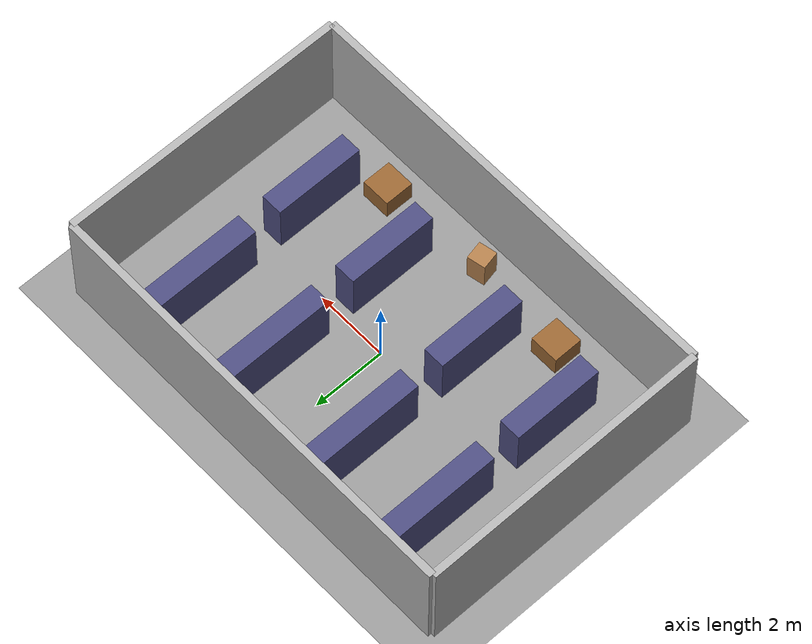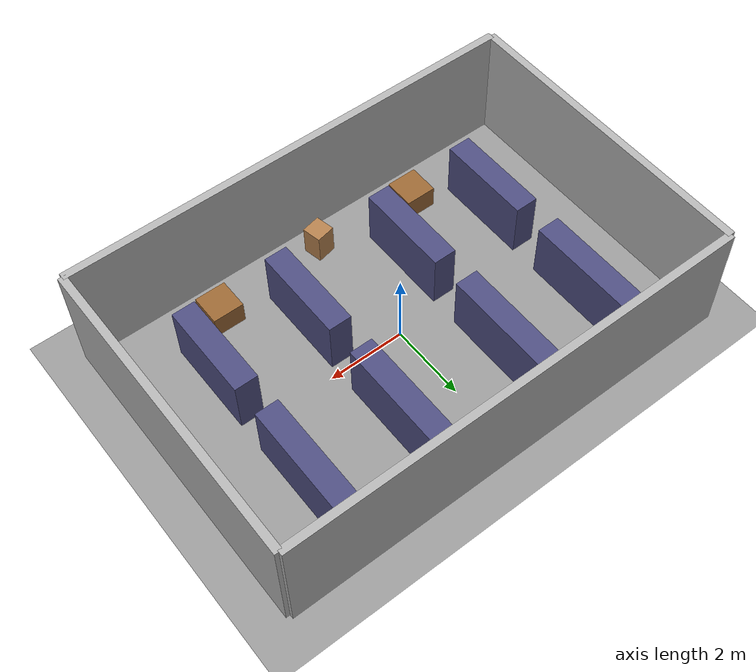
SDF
<?xml version="1.0" ?>
<sdf version="1.8">
  <world name="warehouse">

    <!-- Physics -->
    <physics name="1ms" type="ignored">
      <max_step_size>0.001</max_step_size>
      <real_time_factor>1.0</real_time_factor>
    </physics>

    <!-- Plugins -->
    <plugin filename="gz-sim-physics-system" name="gz::sim::systems::Physics"/>
    <plugin filename="gz-sim-user-commands-system" name="gz::sim::systems::UserCommands"/>
    <plugin filename="gz-sim-scene-broadcaster-system" name="gz::sim::systems::SceneBroadcaster"/>
    <plugin filename="gz-sim-sensors-system" name="gz::sim::systems::Sensors">
      <render_engine>ogre2</render_engine>
    </plugin>
    <plugin filename="gz-sim-imu-system" name="gz::sim::systems::Imu"/>
    <plugin filename="gz-sim-contact-system" name="gz::sim::systems::Contact"/>

    <!-- Lighting -->
    <light type="directional" name="sun">
      <cast_shadows>true</cast_shadows>
      <pose>0 0 15 0 0 0</pose>
      <diffuse>0.9 0.9 0.9 1</diffuse>
      <specular>0.3 0.3 0.3 1</specular>
      <direction>-0.5 0.1 -0.9</direction>
    </light>

    <!-- Ground (콘크리트 바닥) -->
    <model name="ground_plane">
      <static>true</static>
      <link name="link">
        <collision name="collision">
          <geometry>
            <plane>
              <normal>0 0 1</normal>
              <size>100 100</size>
            </plane>
          </geometry>
        </collision>
        <visual name="visual">
          <geometry>
            <plane>
              <normal>0 0 1</normal>
              <size>100 100</size>
            </plane>
          </geometry>
          <material>
            <ambient>0.6 0.6 0.6 1</ambient>
            <diffuse>0.6 0.6 0.6 1</diffuse>
          </material>
        </visual>
      </link>
    </model>

    <!-- 창고 외벽 (12m x 8m) -->

    <model name="wall_north">
      <static>true</static>
      <pose>0 4 1.5 0 0 0</pose>
      <link name="link">
        <collision name="collision">
          <geometry><box><size>12 0.2 3</size></box></geometry>
        </collision>
        <visual name="visual">
          <geometry><box><size>12 0.2 3</size></box></geometry>
          <material>
            <ambient>0.7 0.7 0.7 1</ambient>
            <diffuse>0.7 0.7 0.7 1</diffuse>
          </material>
        </visual>
      </link>
    </model>

    <model name="wall_south">
      <static>true</static>
      <pose>0 -4 1.5 0 0 0</pose>
      <link name="link">
        <collision name="collision">
          <geometry><box><size>12 0.2 3</size></box></geometry>
        </collision>
        <visual name="visual">
          <geometry><box><size>12 0.2 3</size></box></geometry>
          <material>
            <ambient>0.7 0.7 0.7 1</ambient>
            <diffuse>0.7 0.7 0.7 1</diffuse>
          </material>
        </visual>
      </link>
    </model>

    <model name="wall_east">
      <static>true</static>
      <pose>6 0 1.5 0 0 0</pose>
      <link name="link">
        <collision name="collision">
          <geometry><box><size>0.2 8 3</size></box></geometry>
        </collision>
        <visual name="visual">
          <geometry><box><size>0.2 8 3</size></box></geometry>
          <material>
            <ambient>0.7 0.7 0.7 1</ambient>
            <diffuse>0.7 0.7 0.7 1</diffuse>
          </material>
        </visual>
      </link>
    </model>

    <model name="wall_west">
      <static>true</static>
      <pose>-6 0 1.5 0 0 0</pose>
      <link name="link">
        <collision name="collision">
          <geometry><box><size>0.2 8 3</size></box></geometry>
        </collision>
        <visual name="visual">
          <geometry><box><size>0.2 8 3</size></box></geometry>
          <material>
            <ambient>0.7 0.7 0.7 1</ambient>
            <diffuse>0.7 0.7 0.7 1</diffuse>
          </material>
        </visual>
      </link>
    </model>

    <!-- 선반 (Shelves) -->

    <!-- 선반 열 1 -->
    <model name="shelf_1a">
      <static>true</static>
      <pose>-4 2 0.75 0 0 0</pose>
      <link name="link">
        <collision name="collision">
          <geometry><box><size>0.6 3 1.5</size></box></geometry>
        </collision>
        <visual name="visual">
          <geometry><box><size>0.6 3 1.5</size></box></geometry>
          <material>
            <ambient>0.3 0.3 0.5 1</ambient>
            <diffuse>0.3 0.3 0.5 1</diffuse>
          </material>
        </visual>
      </link>
    </model>

    <model name="shelf_1b">
      <static>true</static>
      <pose>-4 -1.5 0.75 0 0 0</pose>
      <link name="link">
        <collision name="collision">
          <geometry><box><size>0.6 2.5 1.5</size></box></geometry>
        </collision>
        <visual name="visual">
          <geometry><box><size>0.6 2.5 1.5</size></box></geometry>
          <material>
            <ambient>0.3 0.3 0.5 1</ambient>
            <diffuse>0.3 0.3 0.5 1</diffuse>
          </material>
        </visual>
      </link>
    </model>

    <!-- 선반 열 2 -->
    <model name="shelf_2a">
      <static>true</static>
      <pose>-1.5 2 0.75 0 0 0</pose>
      <link name="link">
        <collision name="collision">
          <geometry><box><size>0.6 3 1.5</size></box></geometry>
        </collision>
        <visual name="visual">
          <geometry><box><size>0.6 3 1.5</size></box></geometry>
          <material>
            <ambient>0.3 0.3 0.5 1</ambient>
            <diffuse>0.3 0.3 0.5 1</diffuse>
          </material>
        </visual>
      </link>
    </model>

    <model name="shelf_2b">
      <static>true</static>
      <pose>-1.5 -1.5 0.75 0 0 0</pose>
      <link name="link">
        <collision name="collision">
          <geometry><box><size>0.6 2.5 1.5</size></box></geometry>
        </collision>
        <visual name="visual">
          <geometry><box><size>0.6 2.5 1.5</size></box></geometry>
          <material>
            <ambient>0.3 0.3 0.5 1</ambient>
            <diffuse>0.3 0.3 0.5 1</diffuse>
          </material>
        </visual>
      </link>
    </model>

    <!-- 선반 열 3 -->
    <model name="shelf_3a">
      <static>true</static>
      <pose>1.5 2 0.75 0 0 0</pose>
      <link name="link">
        <collision name="collision">
          <geometry><box><size>0.6 3 1.5</size></box></geometry>
        </collision>
        <visual name="visual">
          <geometry><box><size>0.6 3 1.5</size></box></geometry>
          <material>
            <ambient>0.3 0.3 0.5 1</ambient>
            <diffuse>0.3 0.3 0.5 1</diffuse>
          </material>
        </visual>
      </link>
    </model>

    <model name="shelf_3b">
      <static>true</static>
      <pose>1.5 -1.5 0.75 0 0 0</pose>
      <link name="link">
        <collision name="collision">
          <geometry><box><size>0.6 2.5 1.5</size></box></geometry>
        </collision>
        <visual name="visual">
          <geometry><box><size>0.6 2.5 1.5</size></box></geometry>
          <material>
            <ambient>0.3 0.3 0.5 1</ambient>
            <diffuse>0.3 0.3 0.5 1</diffuse>
          </material>
        </visual>
      </link>
    </model>

    <!-- 선반 열 4 -->
    <model name="shelf_4a">
      <static>true</static>
      <pose>4 2 0.75 0 0 0</pose>
      <link name="link">
        <collision name="collision">
          <geometry><box><size>0.6 3 1.5</size></box></geometry>
        </collision>
        <visual name="visual">
          <geometry><box><size>0.6 3 1.5</size></box></geometry>
          <material>
            <ambient>0.3 0.3 0.5 1</ambient>
            <diffuse>0.3 0.3 0.5 1</diffuse>
          </material>
        </visual>
      </link>
    </model>

    <model name="shelf_4b">
      <static>true</static>
      <pose>4 -1.5 0.75 0 0 0</pose>
      <link name="link">
        <collision name="collision">
          <geometry><box><size>0.6 2.5 1.5</size></box></geometry>
        </collision>
        <visual name="visual">
          <geometry><box><size>0.6 2.5 1.5</size></box></geometry>
          <material>
            <ambient>0.3 0.3 0.5 1</ambient>
            <diffuse>0.3 0.3 0.5 1</diffuse>
          </material>
        </visual>
      </link>
    </model>

    <!-- 박스/팔레트 -->

    <model name="pallet_1">
      <static>true</static>
      <pose>-2.7 -3 0.3 0 0 0</pose>
      <link name="link">
        <collision name="collision">
          <geometry><box><size>0.8 0.8 0.6</size></box></geometry>
        </collision>
        <visual name="visual">
          <geometry><box><size>0.8 0.8 0.6</size></box></geometry>
          <material>
            <ambient>0.6 0.4 0.2 1</ambient>
            <diffuse>0.6 0.4 0.2 1</diffuse>
          </material>
        </visual>
      </link>
    </model>

    <model name="pallet_2">
      <static>true</static>
      <pose>3 -3 0.3 0 0 0</pose>
      <link name="link">
        <collision name="collision">
          <geometry><box><size>0.8 0.8 0.6</size></box></geometry>
        </collision>
        <visual name="visual">
          <geometry><box><size>0.8 0.8 0.6</size></box></geometry>
          <material>
            <ambient>0.6 0.4 0.2 1</ambient>
            <diffuse>0.6 0.4 0.2 1</diffuse>
          </material>
        </visual>
      </link>
    </model>

    <model name="box_stack">
      <static>true</static>
      <pose>0 -3.2 0.4 0 0 0.2</pose>
      <link name="link">
        <collision name="collision">
          <geometry><box><size>0.5 0.5 0.8</size></box></geometry>
        </collision>
        <visual name="visual">
          <geometry><box><size>0.5 0.5 0.8</size></box></geometry>
          <material>
            <ambient>0.7 0.5 0.3 1</ambient>
            <diffuse>0.7 0.5 0.3 1</diffuse>
          </material>
        </visual>
      </link>
    </model>

  </world>
</sdf>
